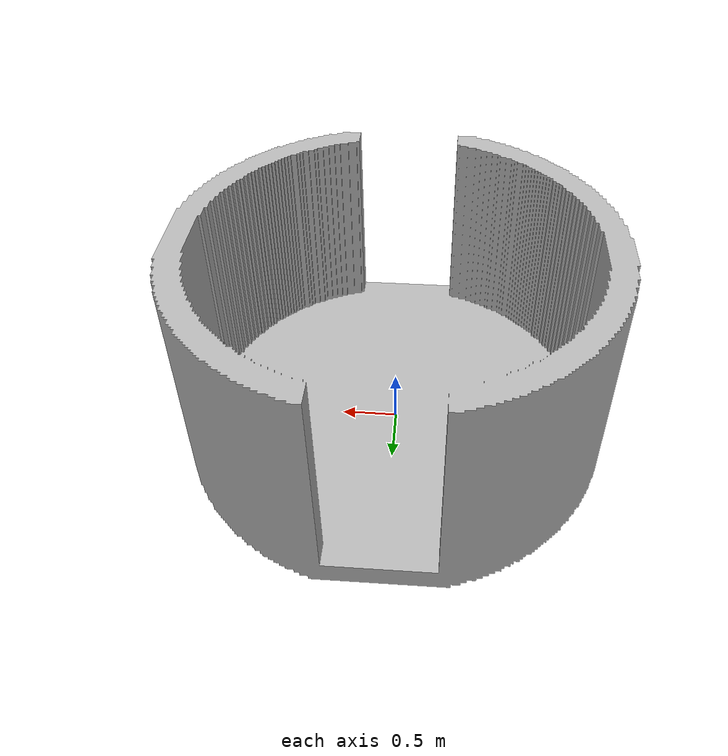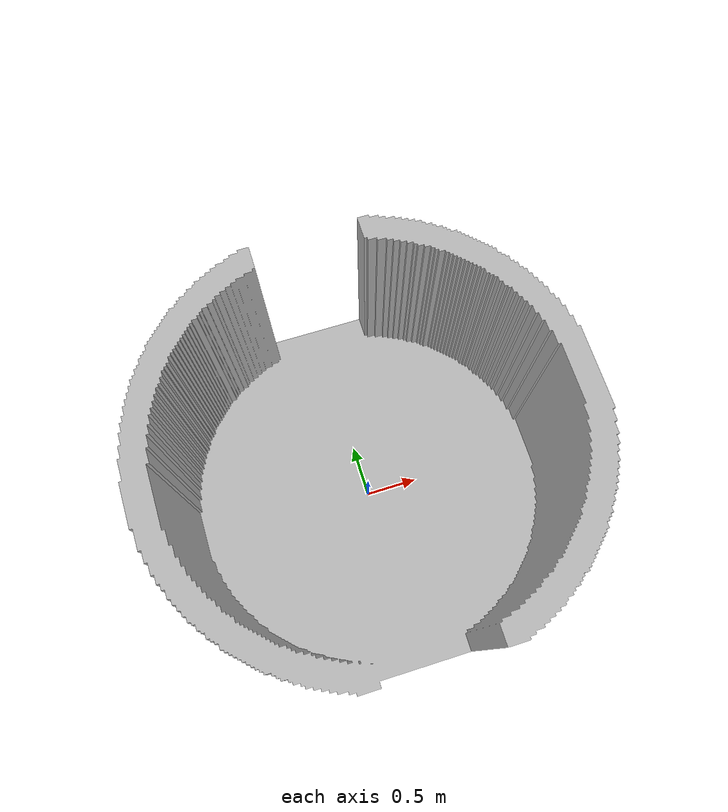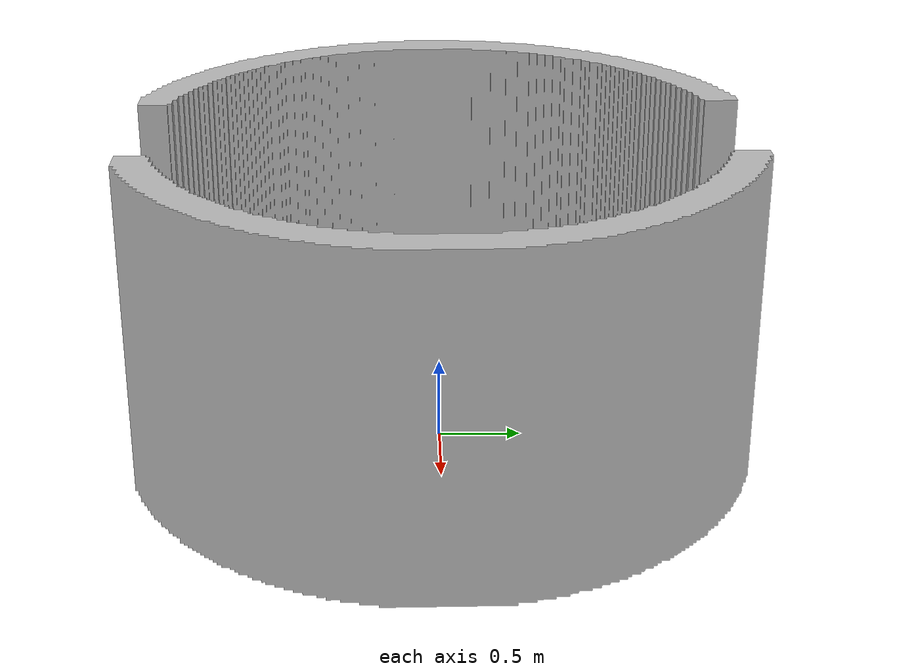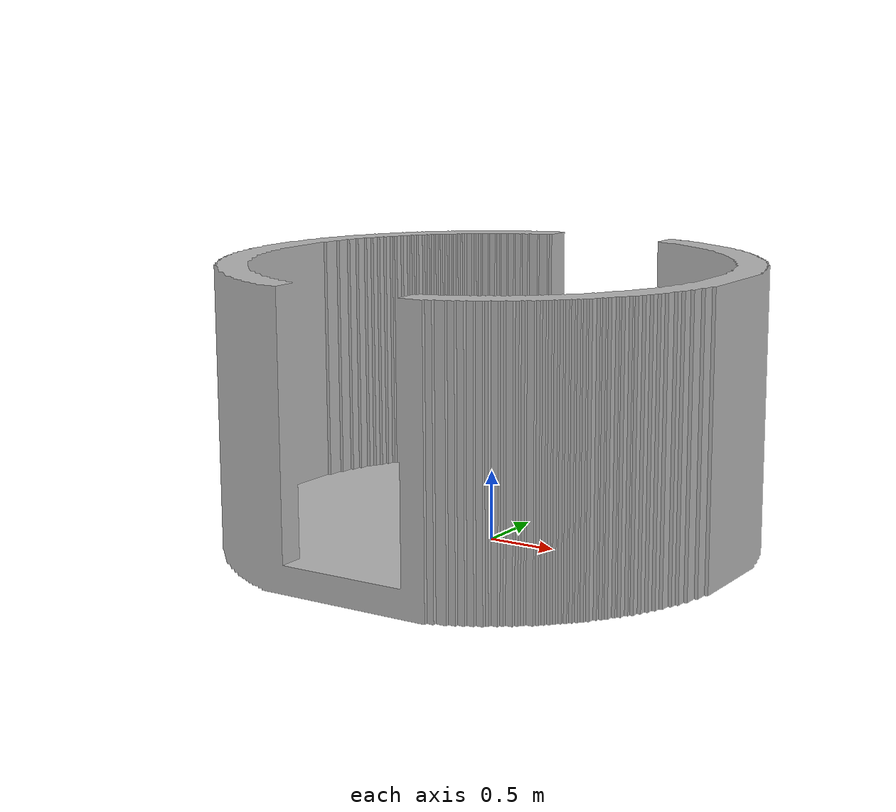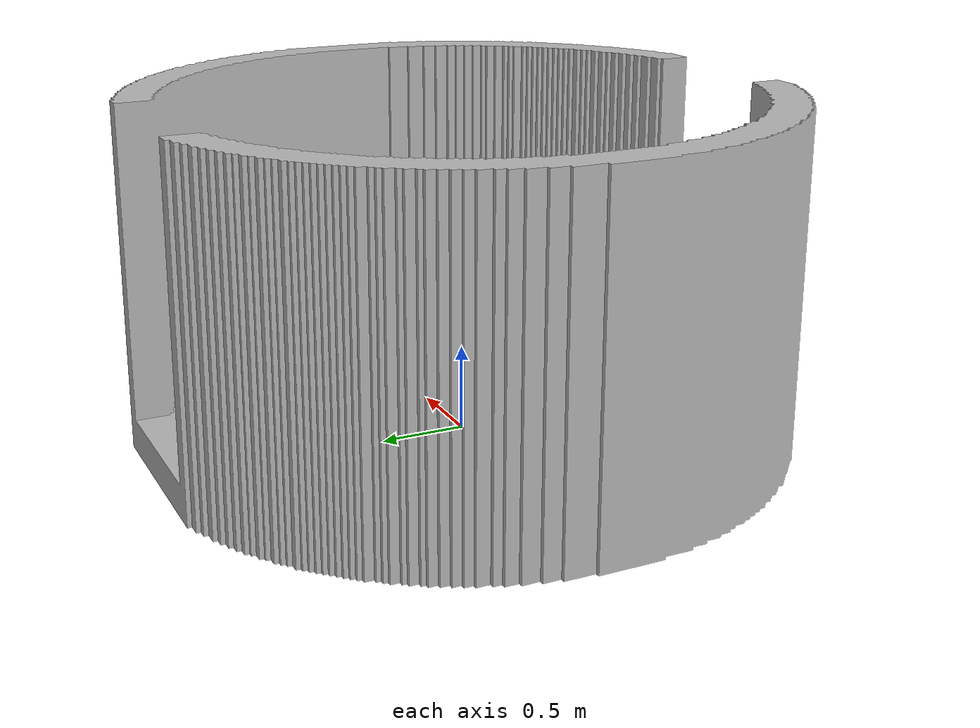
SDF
<?xml version="1.0" ?>
<sdf version="1.6">
  <model name="tue.library/relax_room">
    <link name="1">
      <collision name="1">
        <geometry>
          <mesh>
            <uri>model://tue.library/relax_room/heightmap.stl</uri>
          </mesh>
        </geometry>
        <name>1</name>
      </collision>
      <visual name="1">
        <geometry>
          <mesh>
            <uri>model://tue.library/relax_room/heightmap.stl</uri>
          </mesh>
        </geometry>
        <name>1</name>
      </visual>
      <pose>0 0 0 0 0 0</pose>
      <name>1</name>
    </link>
    <static>true</static>
    <name>tue.library/relax_room</name>
  </model>
</sdf>
